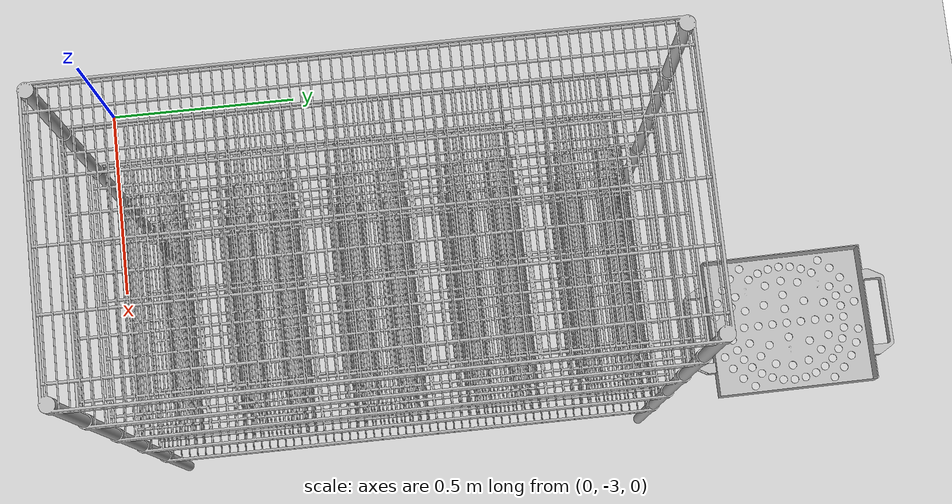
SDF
<sdf version="1.6">
 <world name="default">
  <light name="sun" type="directional">
   <pose>0 0 10 0 -0 0</pose>
   <diffuse>0.8 0.8 0.8 1</diffuse>
   <specular>0.2 0.2 0.2 1</specular>
   <attenuation>
    <range>1000</range>
    <constant>0.9</constant>
    <linear>0.01</linear>
    <quadratic>0.001</quadratic>
   </attenuation>
   <direction>-0.5 0.1 -0.9</direction>
  </light>
  <model name="ground_plane">
   <static>1</static>
   <link name="link">
    <collision name="collision">
     <geometry><plane><normal>0 0 1</normal><size>100 100</size></plane></geometry>
     <surface>
      <contact><collide_bitmask>65535</collide_bitmask></contact>
      <friction><ode><mu>100</mu><mu2>50</mu2></ode></friction>
     </surface>
     <max_contacts>99999999</max_contacts>
    </collision>
    <visual name="visual">
     <cast_shadows>0</cast_shadows>
     <geometry><plane><normal>0 0 1</normal><size>100 100</size></plane></geometry>
     <material>
      <script><uri>file://media/materials/scripts/gazebo.material</uri><name>Gazebo/Grey</name></script>
     </material>
    </visual>
   </link>
  </model>
  <gravity>0 0 -9.8</gravity>
  <magnetic_field>6e-06 2.3e-05 -4.2e-05</magnetic_field>
  <atmosphere type="adiabatic"/>
  <physics name="default_physics" default="0" type="ode">
   <max_contacts>100</max_contacts>
   <max_step_size>0.001</max_step_size>
   <real_time_factor>1</real_time_factor>
   <real_time_update_rate>1000</real_time_update_rate>
   <ode>
    <solver>
     <type>quick</type>
     <iters>50</iters>
     <sor>1.3</sor>
     <use_dynamic_moi_rescaling>0</use_dynamic_moi_rescaling>
    </solver>
    <constraints>
     <cfm>0</cfm>
     <erp>0.2</erp>
     <contact_max_correcting_vel>100</contact_max_correcting_vel>
     <contact_surface_layer>0.001</contact_surface_layer>
    </constraints>
   </ode>
  </physics>
  <scene><ambient>0.4 0.4 0.4 1</ambient><background>0.7 0.7 0.7 1</background><shadows>1</shadows></scene>
  <audio><device>default</device></audio>
  <spherical_coordinates>
   <surface_model>EARTH_WGS84</surface_model>
   <latitude_deg>0</latitude_deg>
   <longitude_deg>0</longitude_deg>
   <elevation>0</elevation>
   <heading_deg>0</heading_deg>
  </spherical_coordinates>
  <model name="CSSD Shelf">
   <static>1</static>
   <link name="link">
    <collision name="collision">
     <geometry>
      <mesh><scale>0.001 0.001 0.001</scale><uri>model://CSSD Shelf/meshes/Abdullah's rack.STL</uri></mesh>
     </geometry>
    </collision>
    <visual name="visual">
     <geometry>
      <mesh><scale>0.001 0.001 0.001</scale><uri>model://CSSD Shelf/meshes/Abdullah's rack.STL</uri></mesh>
     </geometry>
    </visual>
   </link>
   <pose>1 -1.6335 0 1.57 0 -1.57</pose>
  </model>
  <model name="CSSD Tray 0">
   <allow_auto_disable>0</allow_auto_disable>
   <static>0</static>
   <link name="tray">
    <pose>0 0 0 0 -0 3.14</pose>
    <inertial>
     <mass>1.45</mass>
     <pose>0 0 0.06 0 -0 0</pose>
     <inertia><ixx>0.03</ixx><iyy>0.02</iyy><izz>0.05</izz><ixy>0</ixy><ixz>0</ixz><iyz>0</iyz></inertia>
    </inertial>
    <collision name="collision">
     <geometry>
      <mesh><scale>1 1 1</scale><uri>model://CSSD Tray/meshes/Tray_Assem_Locating_Stand-off.STL</uri></mesh>
     </geometry>
     <surface>
      <contact>
       <poissons_ratio>0.35</poissons_ratio>
       <elastic_modulus>7e+10</elastic_modulus>
       <ode><kp>1e+12</kp><kd>20000</kd><max_vel>10</max_vel><min_depth>0</min_depth></ode>
      </contact>
      <friction>
       <torsional>
        <coefficient>1</coefficient>
        <use_patch_radius>0</use_patch_radius>
        <surface_radius>0.01</surface_radius>
       </torsional>
       <ode><mu>1e+09</mu><mu2>1e+10</mu2></ode>
      </friction>
     </surface>
    </collision>
    <collision name="inside tray">
     <pose>0 0 0.11 0 -0 0</pose>
     <geometry><box><size>0.3 0.35 0.1</size></box></geometry>
     <surface>
      <contact><ode><kp>1e+12</kp><kd>20000</kd><max_vel>10</max_vel><min_depth>0</min_depth></ode></contact>
      <friction>
       <torsional>
        <coefficient>1</coefficient>
        <use_patch_radius>0</use_patch_radius>
        <surface_radius>0.01</surface_radius>
       </torsional>
       <ode><mu>1e+09</mu><mu2>1e+10</mu2><fdir1>1 0 0</fdir1></ode>
      </friction>
     </surface>
    </collision>
    <visual name="visual">
     <geometry>
      <mesh><scale>1 1 1</scale><uri>model://CSSD Tray/meshes/Tray_Assem_Locating_Stand-off.STL</uri></mesh>
     </geometry>
    </visual>
    <visual name="marker">
     <pose>0.154 -0 0.0824 0 -1.57 3.14</pose>
     <geometry><box><size>0.04 0.04 1e-05</size></box></geometry>
     <material>
      <script>
       <uri>model://aruco_visual_marker_0/materials/scripts</uri>
       <uri>model://aruco_visual_marker_0/materials/textures</uri>
       <name>ArucoVisualMarker0/Marker</name>
      </script>
      <ambient>1 1 1 1</ambient>
      <diffuse>1 1 1 1</diffuse>
      <specular>0 0 0 1</specular>
      <emissive>1 1 1 0</emissive>
      <shader type="vertex"><normal_map>__default__</normal_map></shader>
     </material>
    </visual>
   </link>
   <pose>0.869086 -1.37223 0.784398 0.009539 -0.008744 0.011973</pose>
  </model>
 </world>
</sdf>
